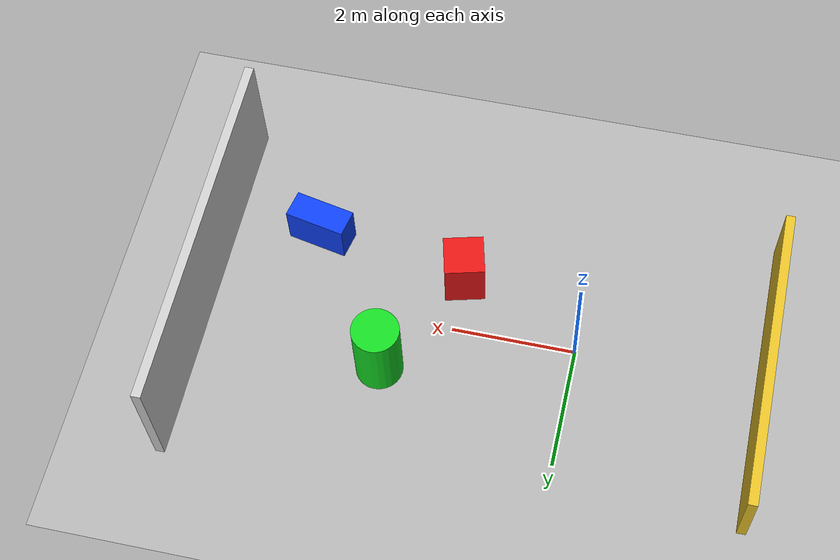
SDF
<?xml version="1.0"?>
<sdf version="1.6">
  <world name="sensor_tutorial_world">
    <gravity>0 0 -9.80665</gravity>

    <physics name="ode_physics" type="ode">
      <max_step_size>0.001</max_step_size>
      <real_time_factor>1.0</real_time_factor>
      <real_time_update_rate>1000.0</real_time_update_rate>
    </physics>

    <scene>
      <ambient>0.45 0.45 0.45 1</ambient>
      <background>0.68 0.76 0.85 1</background>
      <shadows>true</shadows>
    </scene>

    <!-- 기본 지면과 조명을 파일 안에 두어 첫 실행에도 외부 모델을 받지 않는다. -->
    <model name="ground_plane">
      <static>true</static>
      <link name="link">
        <collision name="collision">
          <geometry><plane><normal>0 0 1</normal><size>100 100</size></plane></geometry>
          <surface><friction><ode><mu>1.0</mu><mu2>1.0</mu2></ode></friction></surface>
        </collision>
        <visual name="visual">
          <geometry><plane><normal>0 0 1</normal><size>100 100</size></plane></geometry>
          <material><ambient>0.7 0.7 0.7 1</ambient><diffuse>0.7 0.7 0.7 1</diffuse></material>
        </visual>
      </link>
    </model>
    <light name="sun" type="directional">
      <cast_shadows>true</cast_shadows>
      <pose>0 0 10 0 0 0</pose>
      <diffuse>0.8 0.8 0.8 1</diffuse>
      <specular>0.2 0.2 0.2 1</specular>
      <attenuation><range>1000</range><constant>0.9</constant><linear>0.01</linear><quadratic>0.001</quadratic></attenuation>
      <direction>-0.5 0.1 -0.9</direction>
    </light>

    <!-- +X 방향 카메라와 LiDAR에서 즉시 보이는 색상/거리 기준물. -->
    <model name="red_near_box">
      <static>true</static>
      <pose>2.0 -0.9 0.45 0 0 0.25</pose>
      <link name="link">
        <collision name="collision">
          <geometry><box><size>0.65 0.65 0.9</size></box></geometry>
        </collision>
        <visual name="visual">
          <geometry><box><size>0.65 0.65 0.9</size></box></geometry>
          <material>
            <ambient>0.8 0.05 0.05 1</ambient>
            <diffuse>0.9 0.08 0.08 1</diffuse>
          </material>
        </visual>
      </link>
    </model>

    <model name="green_mid_cylinder">
      <static>true</static>
      <pose>3.0 0.9 0.65 0 0 0</pose>
      <link name="link">
        <collision name="collision">
          <geometry><cylinder><radius>0.38</radius><length>1.3</length></cylinder></geometry>
        </collision>
        <visual name="visual">
          <geometry><cylinder><radius>0.38</radius><length>1.3</length></cylinder></geometry>
          <material>
            <ambient>0.05 0.65 0.10 1</ambient>
            <diffuse>0.08 0.85 0.14 1</diffuse>
          </material>
        </visual>
      </link>
    </model>

    <model name="blue_far_box">
      <static>true</static>
      <pose>4.5 -1.3 0.35 0 0 -0.2</pose>
      <link name="link">
        <collision name="collision">
          <geometry><box><size>1.0 0.45 0.7</size></box></geometry>
        </collision>
        <visual name="visual">
          <geometry><box><size>1.0 0.45 0.7</size></box></geometry>
          <material>
            <ambient>0.03 0.15 0.75 1</ambient>
            <diffuse>0.05 0.25 0.95 1</diffuse>
          </material>
        </visual>
      </link>
    </model>

    <model name="front_wall">
      <static>true</static>
      <pose>6.0 0 1.0 0 0 0</pose>
      <link name="link">
        <collision name="collision">
          <geometry><box><size>0.15 6.0 2.0</size></box></geometry>
        </collision>
        <visual name="visual">
          <geometry><box><size>0.15 6.0 2.0</size></box></geometry>
          <material>
            <ambient>0.7 0.7 0.7 1</ambient>
            <diffuse>0.8 0.8 0.8 1</diffuse>
          </material>
        </visual>
      </link>
    </model>

    <!-- 후방/측면 scan에도 서로 다른 range가 나타나도록 낮은 벽을 둔다. -->
    <model name="rear_wall">
      <static>true</static>
      <pose>-3.0 0 0.6 0 0 0</pose>
      <link name="link">
        <collision name="collision">
          <geometry><box><size>0.15 5.0 1.2</size></box></geometry>
        </collision>
        <visual name="visual">
          <geometry><box><size>0.15 5.0 1.2</size></box></geometry>
          <material>
            <ambient>0.75 0.6 0.1 1</ambient>
            <diffuse>0.9 0.75 0.15 1</diffuse>
          </material>
        </visual>
      </link>
    </model>
  </world>
</sdf>
